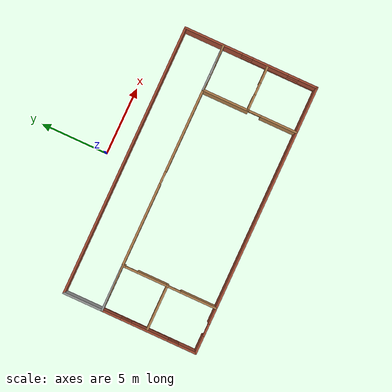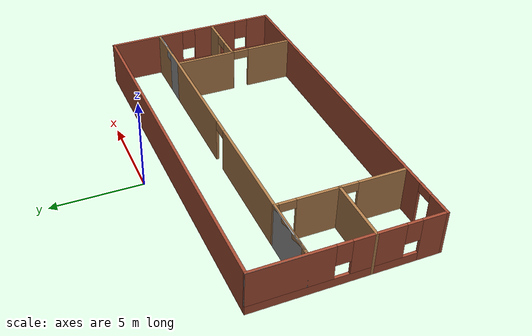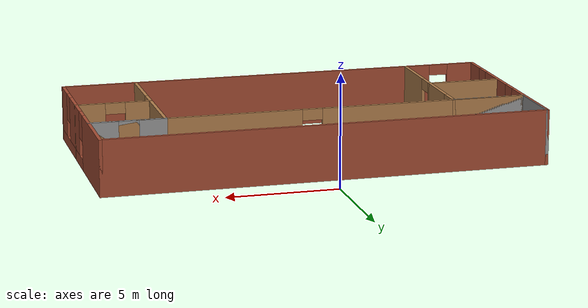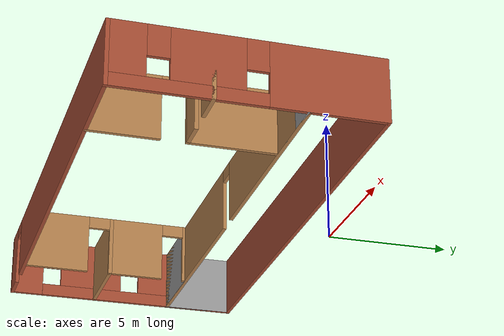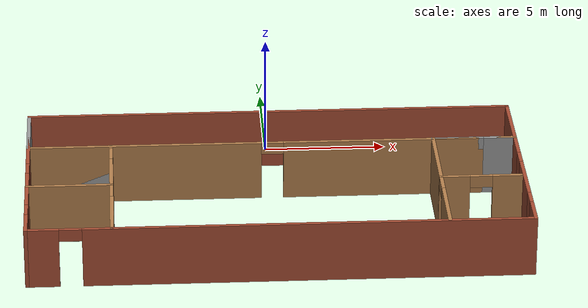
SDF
<?xml version='1.0'?>
<sdf version='1.6'>
  <model name='final_site'>
    <pose frame=''>0.065 -6.335 0 0 -0 0</pose>
    <link name='Wall_0'>
      <collision name='Wall_0_Collision'>
        <geometry>
          <box>
            <size>20 0.15 2.5</size>
          </box>
        </geometry>
        <pose frame=''>0 0 1.25 0 -0 0</pose>
      </collision>
      <visual name='Wall_0_Visual'>
        <pose frame=''>0 0 1.25 0 -0 0</pose>
        <geometry>
          <box>
            <size>20 0.15 2.5</size>
          </box>
        </geometry>
        <material>
          <script>
            <uri>file://media/materials/scripts/gazebo.material</uri>
            <name>Gazebo/Bricks</name>
          </script>
          <ambient>1 1 1 1</ambient>
        </material>
        <meta>
          <layer>0</layer>
        </meta>
      </visual>
      <pose frame=''>-0 4.925 0 0 -0 0</pose>
    </link>
    <link name='Wall_1'>
      <pose frame=''>9.925 0 0 0 -0 -1.5708</pose>
      <visual name='Wall_1_Visual_0'>
        <pose frame=''>-2.832 0 1.25 0 -0 0</pose>
        <geometry>
          <box>
            <size>4.336 0.15 2.5</size>
          </box>
        </geometry>
        <material>
          <script>
            <uri>file://media/materials/scripts/gazebo.material</uri>
            <name>Gazebo/Bricks</name>
          </script>
          <ambient>1 1 1 1</ambient>
        </material>
        <meta>
          <layer>0</layer>
        </meta>
      </visual>
      <collision name='Wall_1_Collision_0'>
        <geometry>
          <box>
            <size>4.336 0.15 2.5</size>
          </box>
        </geometry>
        <pose frame=''>-2.832 0 1.25 0 -0 0</pose>
      </collision>
      <visual name='Wall_1_Visual_1'>
        <pose frame=''>2.168 0 0.25 0 -0 0</pose>
        <geometry>
          <box>
            <size>5.664 0.15 0.5</size>
          </box>
        </geometry>
        <material>
          <script>
            <uri>file://media/materials/scripts/gazebo.material</uri>
            <name>Gazebo/Bricks</name>
          </script>
          <ambient>1 1 1 1</ambient>
        </material>
        <meta>
          <layer>0</layer>
        </meta>
      </visual>
      <collision name='Wall_1_Collision_1'>
        <geometry>
          <box>
            <size>5.664 0.15 0.5</size>
          </box>
        </geometry>
        <pose frame=''>2.168 0 0.25 0 -0 0</pose>
      </collision>
      <visual name='Wall_1_Visual_2'>
        <pose frame=''>1.45739 0 1.5 0 -0 0</pose>
        <geometry>
          <box>
            <size>2.64277 0.15 2</size>
          </box>
        </geometry>
        <material>
          <script>
            <uri>file://media/materials/scripts/gazebo.material</uri>
            <name>Gazebo/Bricks</name>
          </script>
          <ambient>1 1 1 1</ambient>
        </material>
        <meta>
          <layer>0</layer>
        </meta>
      </visual>
      <collision name='Wall_1_Collision_2'>
        <geometry>
          <box>
            <size>2.64277 0.15 2</size>
          </box>
        </geometry>
        <pose frame=''>1.45739 0 1.5 0 -0 0</pose>
      </collision>
      <visual name='Wall_1_Visual_3'>
        <pose frame=''>4.28939 0 1.5 0 -0 0</pose>
        <geometry>
          <box>
            <size>1.42123 0.15 2</size>
          </box>
        </geometry>
        <material>
          <script>
            <uri>file://media/materials/scripts/gazebo.material</uri>
            <name>Gazebo/Bricks</name>
          </script>
          <ambient>1 1 1 1</ambient>
        </material>
        <meta>
          <layer>0</layer>
        </meta>
      </visual>
      <collision name='Wall_1_Collision_3'>
        <geometry>
          <box>
            <size>1.42123 0.15 2</size>
          </box>
        </geometry>
        <pose frame=''>4.28939 0 1.5 0 -0 0</pose>
      </collision>
      <visual name='Wall_1_Visual_4'>
        <pose frame=''>-0.263998 0 1.9 0 -0 0</pose>
        <geometry>
          <box>
            <size>0.8 0.15 1.2</size>
          </box>
        </geometry>
        <material>
          <script>
            <uri>file://media/materials/scripts/gazebo.material</uri>
            <name>Gazebo/Bricks</name>
          </script>
          <ambient>1 1 1 1</ambient>
        </material>
        <meta>
          <layer>0</layer>
        </meta>
      </visual>
      <collision name='Wall_1_Collision_4'>
        <geometry>
          <box>
            <size>0.8 0.15 1.2</size>
          </box>
        </geometry>
        <pose frame=''>-0.263998 0 1.9 0 -0 0</pose>
      </collision>
      <visual name='Wall_1_Visual_5'>
        <pose frame=''>3.17877 0 1.9 0 -0 0</pose>
        <geometry>
          <box>
            <size>0.8 0.15 1.2</size>
          </box>
        </geometry>
        <material>
          <script>
            <uri>file://media/materials/scripts/gazebo.material</uri>
            <name>Gazebo/Bricks</name>
          </script>
          <ambient>1 1 1 1</ambient>
        </material>
        <meta>
          <layer>0</layer>
        </meta>
      </visual>
      <collision name='Wall_1_Collision_5'>
        <geometry>
          <box>
            <size>0.8 0.15 1.2</size>
          </box>
        </geometry>
        <pose frame=''>3.17877 0 1.9 0 -0 0</pose>
      </collision>
    </link>
    <link name='Wall_10'>
      <collision name='Wall_10_Collision'>
        <geometry>
          <box>
            <size>3.5 0.15 2.5</size>
          </box>
        </geometry>
        <pose frame=''>0 0 1.25 0 -0 0</pose>
      </collision>
      <visual name='Wall_10_Visual'>
        <pose frame=''>0 0 1.25 0 -0 0</pose>
        <geometry>
          <box>
            <size>3.5 0.15 2.5</size>
          </box>
        </geometry>
        <material>
          <script>
            <uri>file://media/materials/scripts/gazebo.material</uri>
            <name>Gazebo/Wood</name>
          </script>
          <ambient>1 1 1 1</ambient>
        </material>
        <meta>
          <layer>0</layer>
        </meta>
      </visual>
      <pose frame=''>-8.25 -1.275 0 0 -0 3.14159</pose>
    </link>
    <link name='Wall_12'>
      <pose frame=''>-6.575 -3.075 0 0 -0 -1.5708</pose>
      <visual name='Wall_12_Visual_0'>
        <pose frame=''>-1.79684 0 1.25 0 -0 0</pose>
        <geometry>
          <box>
            <size>0.156317 0.15 2.5</size>
          </box>
        </geometry>
        <material>
          <script>
            <uri>file://media/materials/scripts/gazebo.material</uri>
            <name>Gazebo/Wood</name>
          </script>
          <ambient>1 1 1 1</ambient>
        </material>
        <meta>
          <layer>0</layer>
        </meta>
      </visual>
      <collision name='Wall_12_Collision_0'>
        <geometry>
          <box>
            <size>0.156317 0.15 2.5</size>
          </box>
        </geometry>
        <pose frame=''>-1.79684 0 1.25 0 -0 0</pose>
      </collision>
      <visual name='Wall_12_Visual_1'>
        <pose frame=''>0.528158 0 1.25 0 -0 0</pose>
        <geometry>
          <box>
            <size>2.69368 0.15 2.5</size>
          </box>
        </geometry>
        <material>
          <script>
            <uri>file://media/materials/scripts/gazebo.material</uri>
            <name>Gazebo/Wood</name>
          </script>
          <ambient>1 1 1 1</ambient>
        </material>
        <meta>
          <layer>0</layer>
        </meta>
      </visual>
      <collision name='Wall_12_Collision_1'>
        <geometry>
          <box>
            <size>2.69368 0.15 2.5</size>
          </box>
        </geometry>
        <pose frame=''>0.528158 0 1.25 0 -0 0</pose>
      </collision>
      <visual name='Wall_12_Visual_2'>
        <pose frame=''>-1.26868 0 2.25 0 -0 0</pose>
        <geometry>
          <box>
            <size>0.9 0.15 0.5</size>
          </box>
        </geometry>
        <material>
          <script>
            <uri>file://media/materials/scripts/gazebo.material</uri>
            <name>Gazebo/Wood</name>
          </script>
          <ambient>1 1 1 1</ambient>
        </material>
        <meta>
          <layer>0</layer>
        </meta>
      </visual>
      <collision name='Wall_12_Collision_2'>
        <geometry>
          <box>
            <size>0.9 0.15 0.5</size>
          </box>
        </geometry>
        <pose frame=''>-1.26868 0 2.25 0 -0 0</pose>
      </collision>
    </link>
    <link name='Wall_14'>
      <pose frame=''>8.25 2.075 0 0 -0 3.14159</pose>
      <visual name='Wall_14_Visual_0'>
        <pose frame=''>-1.06883 0 1.25 0 -0 0</pose>
        <geometry>
          <box>
            <size>1.36233 0.15 2.5</size>
          </box>
        </geometry>
        <material>
          <script>
            <uri>file://media/materials/scripts/gazebo.material</uri>
            <name>Gazebo/Grey</name>
          </script>
          <ambient>1 1 1 1</ambient>
        </material>
        <meta>
          <layer>0</layer>
        </meta>
      </visual>
      <collision name='Wall_14_Collision_0'>
        <geometry>
          <box>
            <size>1.36233 0.15 2.5</size>
          </box>
        </geometry>
        <pose frame=''>-1.06883 0 1.25 0 -0 0</pose>
      </collision>
      <visual name='Wall_14_Visual_1'>
        <pose frame=''>1.13117 0 1.25 0 -0 0</pose>
        <geometry>
          <box>
            <size>1.23767 0.15 2.5</size>
          </box>
        </geometry>
        <material>
          <script>
            <uri>file://media/materials/scripts/gazebo.material</uri>
            <name>Gazebo/Grey</name>
          </script>
          <ambient>1 1 1 1</ambient>
        </material>
        <meta>
          <layer>0</layer>
        </meta>
      </visual>
      <collision name='Wall_14_Collision_1'>
        <geometry>
          <box>
            <size>1.23767 0.15 2.5</size>
          </box>
        </geometry>
        <pose frame=''>1.13117 0 1.25 0 -0 0</pose>
      </collision>
      <visual name='Wall_14_Visual_2'>
        <pose frame=''>0.062333 0 2.25 0 -0 0</pose>
        <geometry>
          <box>
            <size>0.9 0.15 0.5</size>
          </box>
        </geometry>
        <material>
          <script>
            <uri>file://media/materials/scripts/gazebo.material</uri>
            <name>Gazebo/Grey</name>
          </script>
          <ambient>1 1 1 1</ambient>
        </material>
        <meta>
          <layer>0</layer>
        </meta>
      </visual>
      <collision name='Wall_14_Collision_2'>
        <geometry>
          <box>
            <size>0.9 0.15 0.5</size>
          </box>
        </geometry>
        <pose frame=''>0.062333 0 2.25 0 -0 0</pose>
      </collision>
    </link>
    <link name='Wall_15'>
      <collision name='Wall_15_Collision'>
        <geometry>
          <box>
            <size>3.5 0.15 2.5</size>
          </box>
        </geometry>
        <pose frame=''>0 0 1.25 0 -0 0</pose>
      </collision>
      <visual name='Wall_15_Visual'>
        <pose frame=''>0 0 1.25 0 -0 0</pose>
        <geometry>
          <box>
            <size>3.5 0.15 2.5</size>
          </box>
        </geometry>
        <material>
          <script>
            <uri>file://media/materials/scripts/gazebo.material</uri>
            <name>Gazebo/Wood</name>
          </script>
          <ambient>1 1 1 1</ambient>
        </material>
        <meta>
          <layer>0</layer>
        </meta>
      </visual>
      <pose frame=''>6.575 0.4 0 0 -0 -1.5708</pose>
    </link>
    <link name='Wall_16'>
      <pose frame=''>8.25 -1.275 0 0 -0 0</pose>
      <visual name='Wall_16_Visual_0'>
        <pose frame=''>-1.13117 0 1.25 0 -0 0</pose>
        <geometry>
          <box>
            <size>1.23767 0.15 2.5</size>
          </box>
        </geometry>
        <material>
          <script>
            <uri>file://media/materials/scripts/gazebo.material</uri>
            <name>Gazebo/Wood</name>
          </script>
          <ambient>1 1 1 1</ambient>
        </material>
        <meta>
          <layer>0</layer>
        </meta>
      </visual>
      <collision name='Wall_16_Collision_0'>
        <geometry>
          <box>
            <size>1.23767 0.15 2.5</size>
          </box>
        </geometry>
        <pose frame=''>-1.13117 0 1.25 0 -0 0</pose>
      </collision>
      <visual name='Wall_16_Visual_1'>
        <pose frame=''>1.06883 0 1.25 0 -0 0</pose>
        <geometry>
          <box>
            <size>1.36233 0.15 2.5</size>
          </box>
        </geometry>
        <material>
          <script>
            <uri>file://media/materials/scripts/gazebo.material</uri>
            <name>Gazebo/Wood</name>
          </script>
          <ambient>1 1 1 1</ambient>
        </material>
        <meta>
          <layer>0</layer>
        </meta>
      </visual>
      <collision name='Wall_16_Collision_1'>
        <geometry>
          <box>
            <size>1.36233 0.15 2.5</size>
          </box>
        </geometry>
        <pose frame=''>1.06883 0 1.25 0 -0 0</pose>
      </collision>
      <visual name='Wall_16_Visual_2'>
        <pose frame=''>-0.062333 0 2.25 0 -0 0</pose>
        <geometry>
          <box>
            <size>0.9 0.15 0.5</size>
          </box>
        </geometry>
        <material>
          <script>
            <uri>file://media/materials/scripts/gazebo.material</uri>
            <name>Gazebo/Wood</name>
          </script>
          <ambient>1 1 1 1</ambient>
        </material>
        <meta>
          <layer>0</layer>
        </meta>
      </visual>
      <collision name='Wall_16_Collision_2'>
        <geometry>
          <box>
            <size>0.9 0.15 0.5</size>
          </box>
        </geometry>
        <pose frame=''>-0.062333 0 2.25 0 -0 0</pose>
      </collision>
    </link>
    <link name='Wall_18'>
      <pose frame=''>6.575 -3.075 0 0 -0 -1.5708</pose>
      <visual name='Wall_18_Visual_0'>
        <pose frame=''>-1.79684 0 1.25 0 -0 0</pose>
        <geometry>
          <box>
            <size>0.156317 0.15 2.5</size>
          </box>
        </geometry>
        <material>
          <script>
            <uri>file://media/materials/scripts/gazebo.material</uri>
            <name>Gazebo/Wood</name>
          </script>
          <ambient>1 1 1 1</ambient>
        </material>
        <meta>
          <layer>0</layer>
        </meta>
      </visual>
      <collision name='Wall_18_Collision_0'>
        <geometry>
          <box>
            <size>0.156317 0.15 2.5</size>
          </box>
        </geometry>
        <pose frame=''>-1.79684 0 1.25 0 -0 0</pose>
      </collision>
      <visual name='Wall_18_Visual_1'>
        <pose frame=''>0.528158 0 1.25 0 -0 0</pose>
        <geometry>
          <box>
            <size>2.69368 0.15 2.5</size>
          </box>
        </geometry>
        <material>
          <script>
            <uri>file://media/materials/scripts/gazebo.material</uri>
            <name>Gazebo/Wood</name>
          </script>
          <ambient>1 1 1 1</ambient>
        </material>
        <meta>
          <layer>0</layer>
        </meta>
      </visual>
      <collision name='Wall_18_Collision_1'>
        <geometry>
          <box>
            <size>2.69368 0.15 2.5</size>
          </box>
        </geometry>
        <pose frame=''>0.528158 0 1.25 0 -0 0</pose>
      </collision>
      <visual name='Wall_18_Visual_2'>
        <pose frame=''>-1.26868 0 2.25 0 -0 0</pose>
        <geometry>
          <box>
            <size>0.9 0.15 0.5</size>
          </box>
        </geometry>
        <material>
          <script>
            <uri>file://media/materials/scripts/gazebo.material</uri>
            <name>Gazebo/Wood</name>
          </script>
          <ambient>1 1 1 1</ambient>
        </material>
        <meta>
          <layer>0</layer>
        </meta>
      </visual>
      <collision name='Wall_18_Collision_2'>
        <geometry>
          <box>
            <size>0.9 0.15 0.5</size>
          </box>
        </geometry>
        <pose frame=''>-1.26868 0 2.25 0 -0 0</pose>
      </collision>
    </link>
    <link name='Wall_2'>
      <pose frame=''>-0 -4.925 0 0 -0 3.14159</pose>
      <visual name='Wall_2_Visual_0'>
        <pose frame=''>-1.13062 0 1.25 0 -0 0</pose>
        <geometry>
          <box>
            <size>17.7388 0.15 2.5</size>
          </box>
        </geometry>
        <material>
          <script>
            <uri>file://media/materials/scripts/gazebo.material</uri>
            <name>Gazebo/Bricks</name>
          </script>
          <ambient>1 1 1 1</ambient>
        </material>
        <meta>
          <layer>0</layer>
        </meta>
      </visual>
      <collision name='Wall_2_Collision_0'>
        <geometry>
          <box>
            <size>17.7388 0.15 2.5</size>
          </box>
        </geometry>
        <pose frame=''>-1.13062 0 1.25 0 -0 0</pose>
      </collision>
      <visual name='Wall_2_Visual_1'>
        <pose frame=''>9.31938 0 1.25 0 -0 0</pose>
        <geometry>
          <box>
            <size>1.36125 0.15 2.5</size>
          </box>
        </geometry>
        <material>
          <script>
            <uri>file://media/materials/scripts/gazebo.material</uri>
            <name>Gazebo/Bricks</name>
          </script>
          <ambient>1 1 1 1</ambient>
        </material>
        <meta>
          <layer>0</layer>
        </meta>
      </visual>
      <collision name='Wall_2_Collision_1'>
        <geometry>
          <box>
            <size>1.36125 0.15 2.5</size>
          </box>
        </geometry>
        <pose frame=''>9.31938 0 1.25 0 -0 0</pose>
      </collision>
      <visual name='Wall_2_Visual_2'>
        <pose frame=''>8.18875 0 2.25 0 -0 0</pose>
        <geometry>
          <box>
            <size>0.9 0.15 0.5</size>
          </box>
        </geometry>
        <material>
          <script>
            <uri>file://media/materials/scripts/gazebo.material</uri>
            <name>Gazebo/Bricks</name>
          </script>
          <ambient>1 1 1 1</ambient>
        </material>
        <meta>
          <layer>0</layer>
        </meta>
      </visual>
      <collision name='Wall_2_Collision_2'>
        <geometry>
          <box>
            <size>0.9 0.15 0.5</size>
          </box>
        </geometry>
        <pose frame=''>8.18875 0 2.25 0 -0 0</pose>
      </collision>
    </link>
    <link name='Wall_3'>
      <pose frame=''>-9.925 0 0 0 -0 1.5708</pose>
      <visual name='Wall_3_Visual_0'>
        <pose frame=''>-4.31265 0 1.25 0 -0 0</pose>
        <geometry>
          <box>
            <size>1.3747 0.15 2.5</size>
          </box>
        </geometry>
        <material>
          <script>
            <uri>file://media/materials/scripts/gazebo.material</uri>
            <name>Gazebo/Bricks</name>
          </script>
          <ambient>1 1 1 1</ambient>
        </material>
        <meta>
          <layer>0</layer>
        </meta>
      </visual>
      <collision name='Wall_3_Collision_0'>
        <geometry>
          <box>
            <size>1.3747 0.15 2.5</size>
          </box>
        </geometry>
        <pose frame=''>-4.31265 0 1.25 0 -0 0</pose>
      </collision>
      <visual name='Wall_3_Visual_1'>
        <pose frame=''>0.687352 0 0.25 0 -0 0</pose>
        <geometry>
          <box>
            <size>8.6253 0.15 0.5</size>
          </box>
        </geometry>
        <material>
          <script>
            <uri>file://media/materials/scripts/gazebo.material</uri>
            <name>Gazebo/Bricks</name>
          </script>
          <ambient>1 1 1 1</ambient>
        </material>
        <meta>
          <layer>0</layer>
        </meta>
      </visual>
      <collision name='Wall_3_Collision_1'>
        <geometry>
          <box>
            <size>8.6253 0.15 0.5</size>
          </box>
        </geometry>
        <pose frame=''>0.687352 0 0.25 0 -0 0</pose>
      </collision>
      <visual name='Wall_3_Visual_2'>
        <pose frame=''>-1.46902 0 1.5 0 -0 0</pose>
        <geometry>
          <box>
            <size>2.71256 0.15 2</size>
          </box>
        </geometry>
        <material>
          <script>
            <uri>file://media/materials/scripts/gazebo.material</uri>
            <name>Gazebo/Bricks</name>
          </script>
          <ambient>1 1 1 1</ambient>
        </material>
        <meta>
          <layer>0</layer>
        </meta>
      </visual>
      <collision name='Wall_3_Collision_2'>
        <geometry>
          <box>
            <size>2.71256 0.15 2</size>
          </box>
        </geometry>
        <pose frame=''>-1.46902 0 1.5 0 -0 0</pose>
      </collision>
      <visual name='Wall_3_Visual_3'>
        <pose frame=''>2.84363 0 1.5 0 -0 0</pose>
        <geometry>
          <box>
            <size>4.31274 0.15 2</size>
          </box>
        </geometry>
        <material>
          <script>
            <uri>file://media/materials/scripts/gazebo.material</uri>
            <name>Gazebo/Bricks</name>
          </script>
          <ambient>1 1 1 1</ambient>
        </material>
        <meta>
          <layer>0</layer>
        </meta>
      </visual>
      <collision name='Wall_3_Collision_3'>
        <geometry>
          <box>
            <size>4.31274 0.15 2</size>
          </box>
        </geometry>
        <pose frame=''>2.84363 0 1.5 0 -0 0</pose>
      </collision>
      <visual name='Wall_3_Visual_4'>
        <pose frame=''>-3.2253 0 1.9 0 -0 0</pose>
        <geometry>
          <box>
            <size>0.8 0.15 1.2</size>
          </box>
        </geometry>
        <material>
          <script>
            <uri>file://media/materials/scripts/gazebo.material</uri>
            <name>Gazebo/Bricks</name>
          </script>
          <ambient>1 1 1 1</ambient>
        </material>
        <meta>
          <layer>0</layer>
        </meta>
      </visual>
      <collision name='Wall_3_Collision_4'>
        <geometry>
          <box>
            <size>0.8 0.15 1.2</size>
          </box>
        </geometry>
        <pose frame=''>-3.2253 0 1.9 0 -0 0</pose>
      </collision>
      <visual name='Wall_3_Visual_5'>
        <pose frame=''>0.28726 0 1.9 0 -0 0</pose>
        <geometry>
          <box>
            <size>0.8 0.15 1.2</size>
          </box>
        </geometry>
        <material>
          <script>
            <uri>file://media/materials/scripts/gazebo.material</uri>
            <name>Gazebo/Bricks</name>
          </script>
          <ambient>1 1 1 1</ambient>
        </material>
        <meta>
          <layer>0</layer>
        </meta>
      </visual>
      <collision name='Wall_3_Collision_5'>
        <geometry>
          <box>
            <size>0.8 0.15 1.2</size>
          </box>
        </geometry>
        <pose frame=''>0.28726 0 1.9 0 -0 0</pose>
      </collision>
    </link>
    <link name='Wall_5'>
      <collision name='Wall_5_Collision'>
        <geometry>
          <box>
            <size>3 0.15 2.5</size>
          </box>
        </geometry>
        <pose frame=''>0 0 1.25 0 -0 0</pose>
      </collision>
      <visual name='Wall_5_Visual'>
        <pose frame=''>0 0 1.25 0 -0 0</pose>
        <geometry>
          <box>
            <size>3 0.15 2.5</size>
          </box>
        </geometry>
        <material>
          <script>
            <uri>file://media/materials/scripts/gazebo.material</uri>
            <name>Gazebo/Grey</name>
          </script>
          <ambient>1 1 1 1</ambient>
        </material>
        <meta>
          <layer>0</layer>
        </meta>
      </visual>
      <pose frame=''>-9.925 3.5 0 0 -0 -1.5708</pose>
    </link>
    <link name='Wall_6'>
      <pose frame=''>-0 2.075 0 0 -0 0</pose>
      <visual name='Wall_6_Visual_0'>
        <pose frame=''>-5.22527 0 1.25 0 -0 0</pose>
        <geometry>
          <box>
            <size>9.54946 0.15 2.5</size>
          </box>
        </geometry>
        <material>
          <script>
            <uri>file://media/materials/scripts/gazebo.material</uri>
            <name>Gazebo/Wood</name>
          </script>
          <ambient>1 1 1 1</ambient>
        </material>
        <meta>
          <layer>0</layer>
        </meta>
      </visual>
      <collision name='Wall_6_Collision_0'>
        <geometry>
          <box>
            <size>9.54946 0.15 2.5</size>
          </box>
        </geometry>
        <pose frame=''>-5.22527 0 1.25 0 -0 0</pose>
      </collision>
      <visual name='Wall_6_Visual_1'>
        <pose frame=''>5.22473 0 1.25 0 -0 0</pose>
        <geometry>
          <box>
            <size>9.55054 0.15 2.5</size>
          </box>
        </geometry>
        <material>
          <script>
            <uri>file://media/materials/scripts/gazebo.material</uri>
            <name>Gazebo/Wood</name>
          </script>
          <ambient>1 1 1 1</ambient>
        </material>
        <meta>
          <layer>0</layer>
        </meta>
      </visual>
      <collision name='Wall_6_Collision_1'>
        <geometry>
          <box>
            <size>9.55054 0.15 2.5</size>
          </box>
        </geometry>
        <pose frame=''>5.22473 0 1.25 0 -0 0</pose>
      </collision>
      <visual name='Wall_6_Visual_2'>
        <pose frame=''>-0.000542 0 2.25 0 -0 0</pose>
        <geometry>
          <box>
            <size>0.9 0.15 0.5</size>
          </box>
        </geometry>
        <material>
          <script>
            <uri>file://media/materials/scripts/gazebo.material</uri>
            <name>Gazebo/Wood</name>
          </script>
          <ambient>1 1 1 1</ambient>
        </material>
        <meta>
          <layer>0</layer>
        </meta>
      </visual>
      <collision name='Wall_6_Collision_2'>
        <geometry>
          <box>
            <size>0.9 0.15 0.5</size>
          </box>
        </geometry>
        <pose frame=''>-0.000542 0 2.25 0 -0 0</pose>
      </collision>
    </link>
    <link name='Wall_8'>
      <collision name='Wall_8_Collision'>
        <geometry>
          <box>
            <size>3.5 0.15 2.5</size>
          </box>
        </geometry>
        <pose frame=''>0 0 1.25 0 -0 0</pose>
      </collision>
      <visual name='Wall_8_Visual'>
        <pose frame=''>0 0 1.25 0 -0 0</pose>
        <geometry>
          <box>
            <size>3.5 0.15 2.5</size>
          </box>
        </geometry>
        <material>
          <script>
            <uri>file://media/materials/scripts/gazebo.material</uri>
            <name>Gazebo/Grey</name>
          </script>
          <ambient>1 1 1 1</ambient>
        </material>
        <meta>
          <layer>0</layer>
        </meta>
      </visual>
      <pose frame=''>-8.25 2.075 0 0 -0 0</pose>
    </link>
    <link name='Wall_9'>
      <pose frame=''>-6.575 0.4 0 0 -0 -1.5708</pose>
      <visual name='Wall_9_Visual_0'>
        <pose frame=''>-1.61355 0 1.25 0 -0 0</pose>
        <geometry>
          <box>
            <size>0.272905 0.15 2.5</size>
          </box>
        </geometry>
        <material>
          <script>
            <uri>file://media/materials/scripts/gazebo.material</uri>
            <name>Gazebo/Wood</name>
          </script>
          <ambient>1 1 1 1</ambient>
        </material>
        <meta>
          <layer>0</layer>
        </meta>
      </visual>
      <collision name='Wall_9_Collision_0'>
        <geometry>
          <box>
            <size>0.272905 0.15 2.5</size>
          </box>
        </geometry>
        <pose frame=''>-1.61355 0 1.25 0 -0 0</pose>
      </collision>
      <visual name='Wall_9_Visual_1'>
        <pose frame=''>0.586452 0 1.25 0 -0 0</pose>
        <geometry>
          <box>
            <size>2.32709 0.15 2.5</size>
          </box>
        </geometry>
        <material>
          <script>
            <uri>file://media/materials/scripts/gazebo.material</uri>
            <name>Gazebo/Wood</name>
          </script>
          <ambient>1 1 1 1</ambient>
        </material>
        <meta>
          <layer>0</layer>
        </meta>
      </visual>
      <collision name='Wall_9_Collision_1'>
        <geometry>
          <box>
            <size>2.32709 0.15 2.5</size>
          </box>
        </geometry>
        <pose frame=''>0.586452 0 1.25 0 -0 0</pose>
      </collision>
      <visual name='Wall_9_Visual_2'>
        <pose frame=''>-1.0271 0 2.25 0 -0 0</pose>
        <geometry>
          <box>
            <size>0.9 0.15 0.5</size>
          </box>
        </geometry>
        <material>
          <script>
            <uri>file://media/materials/scripts/gazebo.material</uri>
            <name>Gazebo/Wood</name>
          </script>
          <ambient>1 1 1 1</ambient>
        </material>
        <meta>
          <layer>0</layer>
        </meta>
      </visual>
      <collision name='Wall_9_Collision_2'>
        <geometry>
          <box>
            <size>0.9 0.15 0.5</size>
          </box>
        </geometry>
        <pose frame=''>-1.0271 0 2.25 0 -0 0</pose>
      </collision>
    </link>
    <static>1</static>
  </model>
</sdf>
